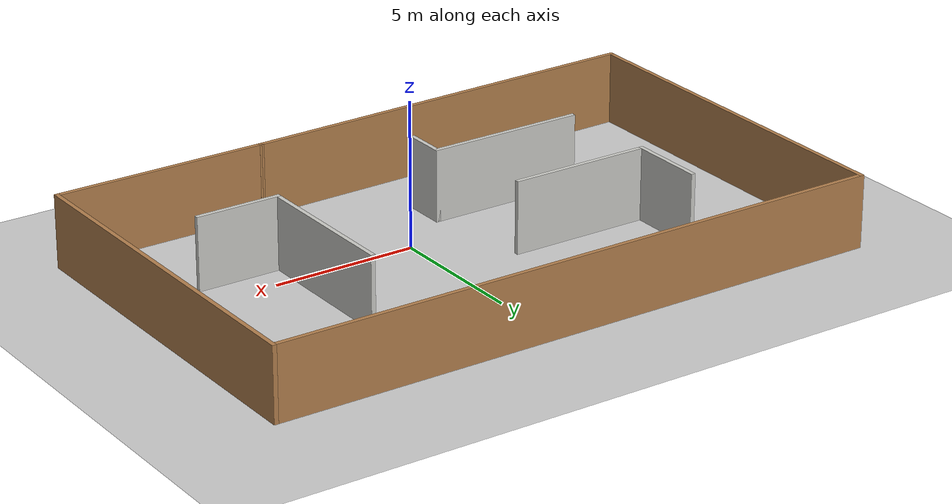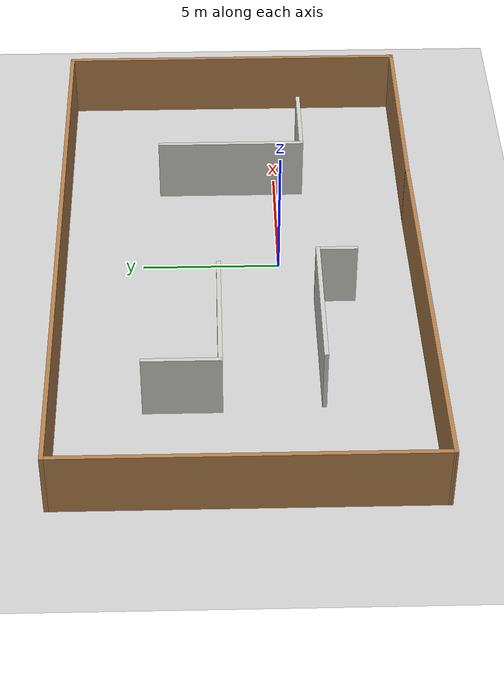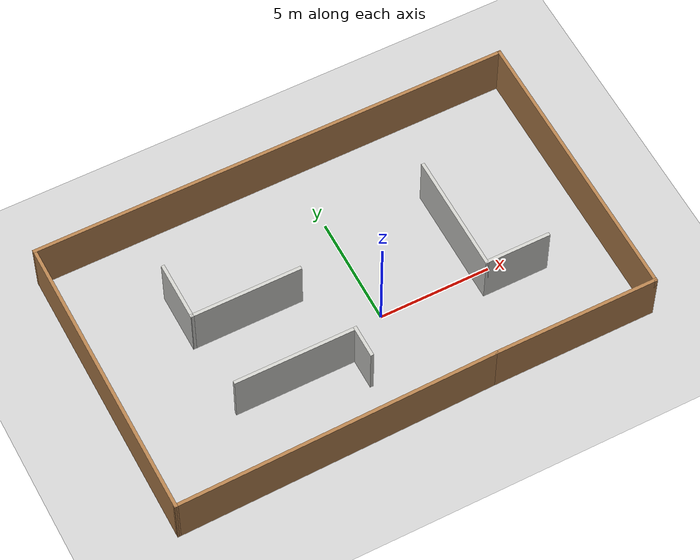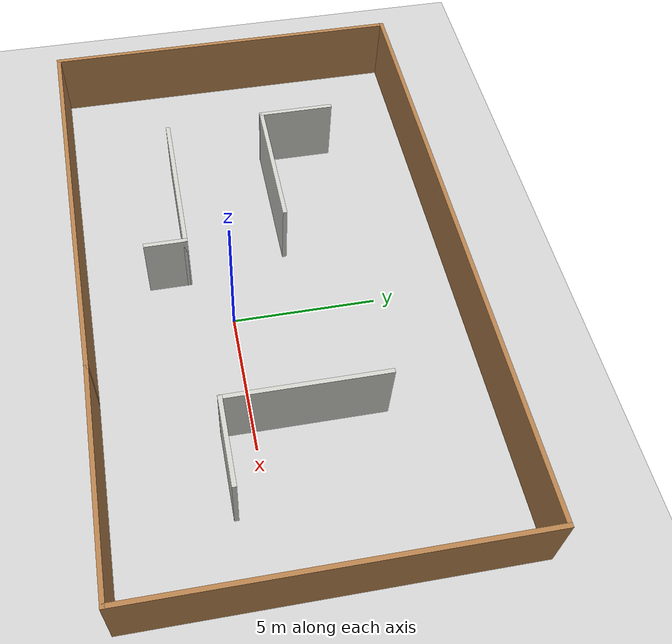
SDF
<sdf version="1.7">
 <world name="default">
  <light name="sun" type="directional">
   <pose>0 0 10 0 -0 0</pose>
   <diffuse>0.8 0.8 0.8 1</diffuse>
   <specular>0.2 0.2 0.2 1</specular>
   <attenuation>
    <range>1000</range>
    <constant>0.9</constant>
    <linear>0.01</linear>
    <quadratic>0.001</quadratic>
   </attenuation>
   <direction>-0.5 0.1 -0.9</direction>
   <spot><inner_angle>0</inner_angle><outer_angle>0</outer_angle><falloff>0</falloff></spot>
  </light>
  <model name="ground_plane">
   <static>1</static>
   <link name="link">
    <collision name="collision">
     <geometry><plane><normal>0 0 1</normal><size>100 100</size></plane></geometry>
     <surface>
      <contact><collide_bitmask>65535</collide_bitmask></contact>
      <friction><ode><mu>100</mu><mu2>50</mu2></ode></friction>
     </surface>
    </collision>
    <visual name="visual">
     <cast_shadows>0</cast_shadows>
     <geometry><plane><normal>0 0 1</normal><size>100 100</size></plane></geometry>
     <material>
      <script><uri>file://media/materials/scripts/gazebo.material</uri><name>Gazebo/Grey</name></script>
     </material>
    </visual>
   </link>
  </model>
  <gravity>0 0 -9.8</gravity>
  <magnetic_field>6e-06 2.3e-05 -4.2e-05</magnetic_field>
  <atmosphere type="adiabatic"/>
  <physics type="ode">
   <max_step_size>0.001</max_step_size>
   <real_time_factor>1</real_time_factor>
   <real_time_update_rate>1000</real_time_update_rate>
  </physics>
  <scene><ambient>0.4 0.4 0.4 1</ambient><background>0.7 0.7 0.7 1</background><shadows>1</shadows></scene>
  <spherical_coordinates>
   <surface_model>EARTH_WGS84</surface_model>
   <latitude_deg>0</latitude_deg>
   <longitude_deg>0</longitude_deg>
   <elevation>0</elevation>
   <heading_deg>0</heading_deg>
  </spherical_coordinates>
  <model name="Maze_room">
   <pose>-0.916568 1.39937 0 0 -0 0</pose>
   <link name="Wall_0">
    <collision name="Wall_0_Collision">
     <geometry><box><size>7.5 0.15 2.5</size></box></geometry>
     <pose>0 0 1.25 0 -0 0</pose>
    </collision>
    <visual name="Wall_0_Visual">
     <pose>0 0 1.25 0 -0 0</pose>
     <geometry><box><size>7.5 0.15 2.5</size></box></geometry>
     <material>
      <script><uri>file://media/materials/scripts/gazebo.material</uri><name>Gazebo/Wood</name></script>
      <ambient>1 1 1 1</ambient>
     </material>
     <meta><layer>0</layer></meta>
    </visual>
    <pose>7.12565 -6.29935 0 0 -0 0</pose>
   </link>
   <link name="Wall_1">
    <collision name="Wall_1_Collision">
     <geometry><box><size>13 0.15 2.5</size></box></geometry>
     <pose>0 0 1.25 0 -0 0</pose>
    </collision>
    <visual name="Wall_1_Visual">
     <pose>0 0 1.25 0 -0 0</pose>
     <geometry><box><size>13 0.15 2.5</size></box></geometry>
     <material>
      <script><uri>file://media/materials/scripts/gazebo.material</uri><name>Gazebo/Wood</name></script>
      <ambient>1 1 1 1</ambient>
     </material>
     <meta><layer>0</layer></meta>
    </visual>
    <pose>10.8007 0.125652 0 0 -0 1.5708</pose>
   </link>
   <link name="Wall_10">
    <collision name="Wall_10_Collision">
     <geometry><box><size>3 0.15 2.5</size></box></geometry>
     <pose>0 0 1.25 0 -0 0</pose>
    </collision>
    <visual name="Wall_10_Visual">
     <pose>0 0 1.25 0 -0 0</pose>
     <geometry><box><size>3 0.15 2.5</size></box></geometry>
     <material>
      <script><uri>file://media/materials/scripts/gazebo.material</uri><name>Gazebo/CeilingTiled</name></script>
      <ambient>1 1 1 1</ambient>
     </material>
     <meta><layer>0</layer></meta>
    </visual>
    <pose>6.61363 -2.39644 0 0 -0 0</pose>
   </link>
   <link name="Wall_12">
    <collision name="Wall_12_Collision">
     <geometry><box><size>5.5 0.15 2.5</size></box></geometry>
     <pose>0 0 1.25 0 -0 0</pose>
    </collision>
    <visual name="Wall_12_Visual">
     <pose>0 0 1.25 0 -0 0</pose>
     <geometry><box><size>5.5 0.15 2.5</size></box></geometry>
     <material>
      <script><uri>file://media/materials/scripts/gazebo.material</uri><name>Gazebo/CeilingTiled</name></script>
      <ambient>1 1 1 1</ambient>
     </material>
     <meta><layer>0</layer></meta>
    </visual>
    <pose>-3.64208 -2.70701 0 0 -0 0</pose>
   </link>
   <link name="Wall_13">
    <collision name="Wall_13_Collision">
     <geometry><box><size>1.5 0.15 2.5</size></box></geometry>
     <pose>0 0 1.25 0 -0 0</pose>
    </collision>
    <visual name="Wall_13_Visual">
     <pose>0 0 1.25 0 -0 0</pose>
     <geometry><box><size>1.5 0.15 2.5</size></box></geometry>
     <material>
      <script><uri>file://media/materials/scripts/gazebo.material</uri><name>Gazebo/CeilingTiled</name></script>
      <ambient>1 1 1 1</ambient>
     </material>
     <meta><layer>0</layer></meta>
    </visual>
    <pose>-0.967082 -3.38201 0 0 -0 -1.5708</pose>
   </link>
   <link name="Wall_2">
    <collision name="Wall_2_Collision">
     <geometry><box><size>21.75 0.15 2.5</size></box></geometry>
     <pose>0 0 1.25 0 -0 0</pose>
    </collision>
    <visual name="Wall_2_Visual">
     <pose>0 0 1.25 0 -0 0</pose>
     <geometry><box><size>21.75 0.15 2.5</size></box></geometry>
     <material>
      <script><uri>file://media/materials/scripts/gazebo.material</uri><name>Gazebo/Wood</name></script>
      <ambient>1 1 1 1</ambient>
     </material>
     <meta><layer>0</layer></meta>
    </visual>
    <pose>0.000651 6.55065 0 0 -0 3.14159</pose>
   </link>
   <link name="Wall_3">
    <collision name="Wall_3_Collision">
     <geometry><box><size>13.25 0.15 2.5</size></box></geometry>
     <pose>0 0 1.25 0 -0 0</pose>
    </collision>
    <visual name="Wall_3_Visual">
     <pose>0 0 1.25 0 -0 0</pose>
     <geometry><box><size>13.25 0.15 2.5</size></box></geometry>
     <material>
      <script><uri>file://media/materials/scripts/gazebo.material</uri><name>Gazebo/Wood</name></script>
      <ambient>1 1 1 1</ambient>
     </material>
     <meta><layer>0</layer></meta>
    </visual>
    <pose>-10.7993 0.000652 0 0 -0 -1.5708</pose>
   </link>
   <link name="Wall_4">
    <collision name="Wall_4_Collision">
     <geometry><box><size>14.4022 0.15 2.5</size></box></geometry>
     <pose>0 0 1.25 0 -0 0</pose>
    </collision>
    <visual name="Wall_4_Visual">
     <pose>0 0 1.25 0 -0 0</pose>
     <geometry><box><size>14.4022 0.15 2.5</size></box></geometry>
     <material>
      <script><uri>file://media/materials/scripts/gazebo.material</uri><name>Gazebo/Wood</name></script>
      <ambient>1 1 1 1</ambient>
     </material>
     <meta><layer>0</layer></meta>
    </visual>
    <pose>-3.67435 -6.42435 0 0 -0 0.017542</pose>
   </link>
   <link name="Wall_6">
    <collision name="Wall_6_Collision">
     <geometry><box><size>2.75 0.15 2.5</size></box></geometry>
     <pose>0 0 1.25 0 -0 0</pose>
    </collision>
    <visual name="Wall_6_Visual">
     <pose>0 0 1.25 0 -0 0</pose>
     <geometry><box><size>2.75 0.15 2.5</size></box></geometry>
     <material>
      <script><uri>file://media/materials/scripts/gazebo.material</uri><name>Gazebo/CeilingTiled</name></script>
      <ambient>1 1 1 1</ambient>
     </material>
     <meta><layer>0</layer></meta>
    </visual>
    <pose>-6.50167 2.14578 0 0 -0 -1.5708</pose>
   </link>
   <link name="Wall_7">
    <collision name="Wall_7_Collision">
     <geometry><box><size>5 0.15 2.5</size></box></geometry>
     <pose>0 0 1.25 0 -0 0</pose>
    </collision>
    <visual name="Wall_7_Visual">
     <pose>0 0 1.25 0 -0 0</pose>
     <geometry><box><size>5 0.15 2.5</size></box></geometry>
     <material>
      <script><uri>file://media/materials/scripts/gazebo.material</uri><name>Gazebo/CeilingTiled</name></script>
      <ambient>1 1 1 1</ambient>
     </material>
     <meta><layer>0</layer></meta>
    </visual>
    <pose>-4.07667 0.845781 0 0 -0 0</pose>
   </link>
   <link name="Wall_9">
    <collision name="Wall_9_Collision">
     <geometry><box><size>5.5 0.15 2.5</size></box></geometry>
     <pose>0 0 1.25 0 -0 0</pose>
    </collision>
    <visual name="Wall_9_Visual">
     <pose>0 0 1.25 0 -0 0</pose>
     <geometry><box><size>5.5 0.15 2.5</size></box></geometry>
     <material>
      <script><uri>file://media/materials/scripts/gazebo.material</uri><name>Gazebo/CeilingTiled</name></script>
      <ambient>1 1 1 1</ambient>
     </material>
     <meta><layer>0</layer></meta>
    </visual>
    <pose>5.18863 0.278558 0 0 -0 -1.5708</pose>
   </link>
   <static>1</static>
  </model>
 </world>
</sdf>
